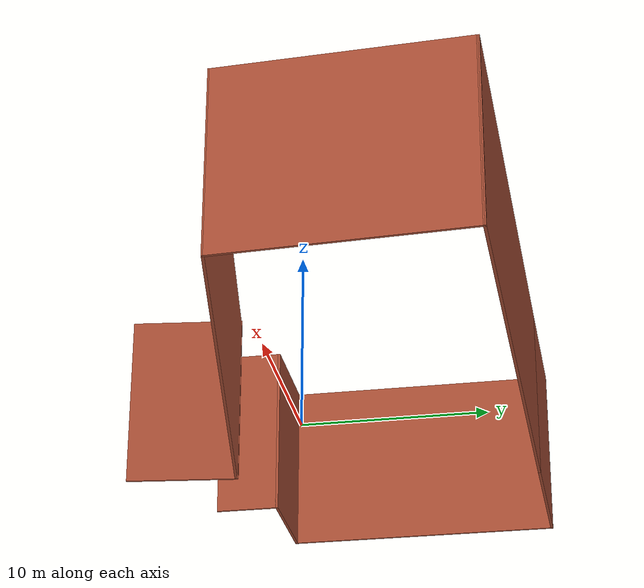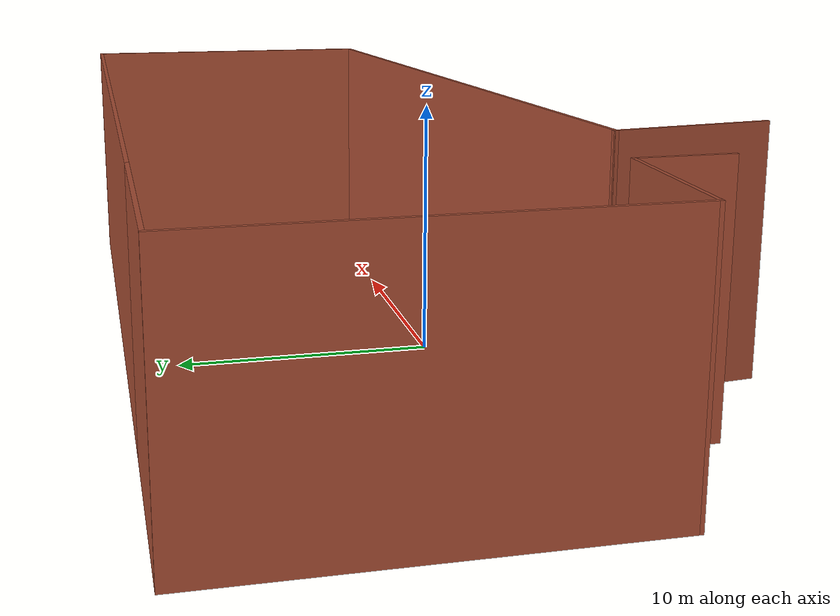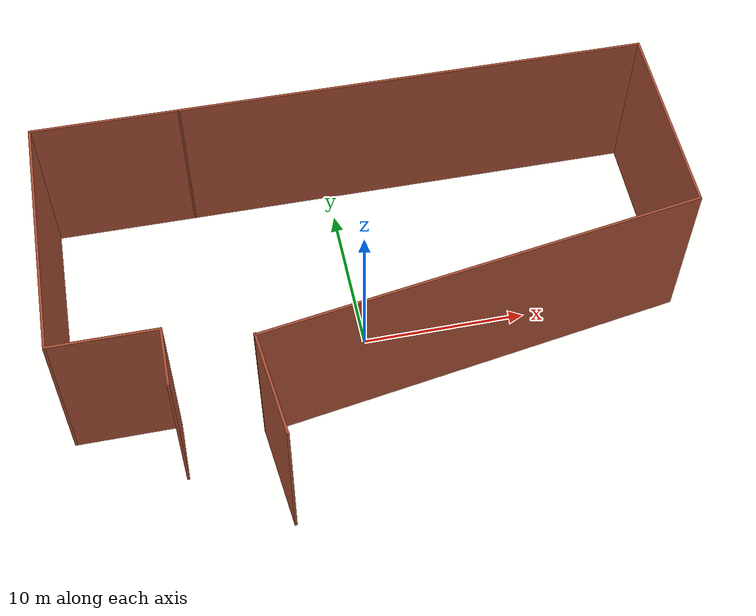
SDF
<?xml version='1.0'?>
<sdf version='1.6'>
  <model name='hoijo_building_v0.1'>
    <pose frame=''>1.06174 0.347192 0 0 -0 0</pose>
    <link name='Wall_0'>
      <collision name='Wall_0_Collision'>
        <geometry>
          <box>
            <size>3.66258 0.15 10</size>
          </box>
        </geometry>
        <pose frame=''>0 0 5 0 -0 0</pose>
      </collision>
      <visual name='Wall_0_Visual'>
        <pose frame=''>0 0 5 0 -0 0</pose>
        <geometry>
          <box>
            <size>3.66258 0.15 10</size>
          </box>
        </geometry>
        <material>
          <script>
            <uri>file://media/materials/scripts/gazebo.material</uri>
            <name>Gazebo/Bricks</name>
          </script>
          <ambient>1 1 1 1</ambient>
        </material>
        <meta>
          <layer>0</layer>
        </meta>
      </visual>
      <pose frame=''>-12.7517 -5.84969 0 0 -0 1.5708</pose>
    </link>
    <link name='Wall_1'>
      <collision name='Wall_1_Collision'>
        <geometry>
          <box>
            <size>6.25 0.15 10</size>
          </box>
        </geometry>
        <pose frame=''>0 0 5 0 -0 0</pose>
      </collision>
      <visual name='Wall_1_Visual'>
        <pose frame=''>0 0 5 0 -0 0</pose>
        <geometry>
          <box>
            <size>6.25 0.15 10</size>
          </box>
        </geometry>
        <material>
          <script>
            <uri>file://media/materials/scripts/gazebo.material</uri>
            <name>Gazebo/Bricks</name>
          </script>
          <ambient>1 1 1 1</ambient>
        </material>
        <meta>
          <layer>0</layer>
        </meta>
      </visual>
      <pose frame=''>-15.8017 -4.09319 0 0 -0 3.14159</pose>
    </link>
    <link name='Wall_2'>
      <collision name='Wall_2_Collision'>
        <geometry>
          <box>
            <size>15.837 0.15 10</size>
          </box>
        </geometry>
        <pose frame=''>0 0 5 0 -0 0</pose>
      </collision>
      <visual name='Wall_2_Visual'>
        <pose frame=''>0 0 5 0 -0 0</pose>
        <geometry>
          <box>
            <size>15.837 0.15 10</size>
          </box>
        </geometry>
        <material>
          <script>
            <uri>file://media/materials/scripts/gazebo.material</uri>
            <name>Gazebo/Bricks</name>
          </script>
          <ambient>1 1 1 1</ambient>
        </material>
        <meta>
          <layer>0</layer>
        </meta>
      </visual>
      <pose frame=''>-18.8517 3.75031 0 0 -0 1.5708</pose>
    </link>
    <link name='Wall_3'>
      <collision name='Wall_3_Collision'>
        <geometry>
          <box>
            <size>9 0.15 10</size>
          </box>
        </geometry>
        <pose frame=''>0 0 5 0 -0 0</pose>
      </collision>
      <visual name='Wall_3_Visual'>
        <pose frame=''>0 0 5 0 -0 0</pose>
        <geometry>
          <box>
            <size>9 0.15 10</size>
          </box>
        </geometry>
        <material>
          <script>
            <uri>file://media/materials/scripts/gazebo.material</uri>
            <name>Gazebo/Bricks</name>
          </script>
          <ambient>1 1 1 1</ambient>
        </material>
        <meta>
          <layer>0</layer>
        </meta>
      </visual>
      <pose frame=''>-14.4267 11.5938 0 0 -0 0</pose>
    </link>
    <link name='Wall_4'>
      <collision name='Wall_4_Collision'>
        <geometry>
          <box>
            <size>29 0.15 10</size>
          </box>
        </geometry>
        <pose frame=''>0 0 5 0 -0 0</pose>
      </collision>
      <visual name='Wall_4_Visual'>
        <pose frame=''>0 0 5 0 -0 0</pose>
        <geometry>
          <box>
            <size>29 0.15 10</size>
          </box>
        </geometry>
        <material>
          <script>
            <uri>file://media/materials/scripts/gazebo.material</uri>
            <name>Gazebo/Bricks</name>
          </script>
          <ambient>1 1 1 1</ambient>
        </material>
        <meta>
          <layer>0</layer>
        </meta>
      </visual>
      <pose frame=''>4.42326 11.6173 0 0 -0 0.001629</pose>
    </link>
    <link name='Wall_5'>
      <collision name='Wall_5_Collision'>
        <geometry>
          <box>
            <size>12.8916 0.15 10</size>
          </box>
        </geometry>
        <pose frame=''>0 0 5 0 -0 0</pose>
      </collision>
      <visual name='Wall_5_Visual'>
        <pose frame=''>0 0 5 0 -0 0</pose>
        <geometry>
          <box>
            <size>12.8916 0.15 10</size>
          </box>
        </geometry>
        <material>
          <script>
            <uri>file://media/materials/scripts/gazebo.material</uri>
            <name>Gazebo/Bricks</name>
          </script>
          <ambient>1 1 1 1</ambient>
        </material>
        <meta>
          <layer>0</layer>
        </meta>
      </visual>
      <pose frame=''>18.5459 5.27717 0 0 0 -1.61828</pose>
    </link>
    <link name='Wall_6'>
      <collision name='Wall_6_Collision'>
        <geometry>
          <box>
            <size>26.6809 0.15 10</size>
          </box>
        </geometry>
        <pose frame=''>0 0 5 0 -0 0</pose>
      </collision>
      <visual name='Wall_6_Visual'>
        <pose frame=''>0 0 5 0 -0 0</pose>
        <geometry>
          <box>
            <size>26.6809 0.15 10</size>
          </box>
        </geometry>
        <material>
          <script>
            <uri>file://media/materials/scripts/gazebo.material</uri>
            <name>Gazebo/Bricks</name>
          </script>
          <ambient>1 1 1 1</ambient>
        </material>
        <meta>
          <layer>0</layer>
        </meta>
      </visual>
      <pose frame=''>5.15562 -3.2966 0 0 0 -2.97776</pose>
    </link>
    <link name='Wall_7'>
      <collision name='Wall_7_Collision'>
        <geometry>
          <box>
            <size>6.41173 0.15 10</size>
          </box>
        </geometry>
        <pose frame=''>0 0 5 0 -0 0</pose>
      </collision>
      <visual name='Wall_7_Visual'>
        <pose frame=''>0 0 5 0 -0 0</pose>
        <geometry>
          <box>
            <size>6.41173 0.15 10</size>
          </box>
        </geometry>
        <material>
          <script>
            <uri>file://media/materials/scripts/gazebo.material</uri>
            <name>Gazebo/Bricks</name>
          </script>
          <ambient>1 1 1 1</ambient>
        </material>
        <meta>
          <layer>0</layer>
        </meta>
      </visual>
      <pose frame=''>-7.58329 -8.52503 0 0 0 -1.45912</pose>
    </link>
    <static>1</static>
  </model>
</sdf>
